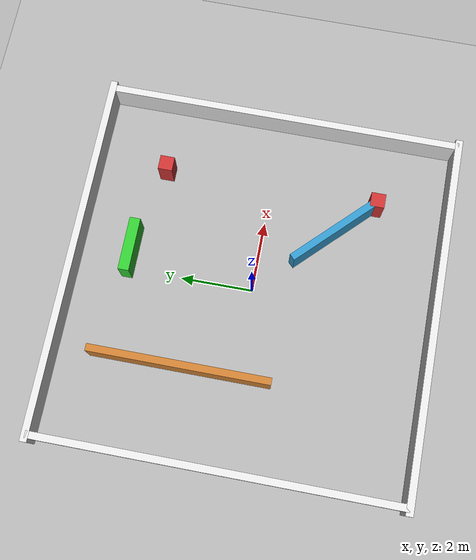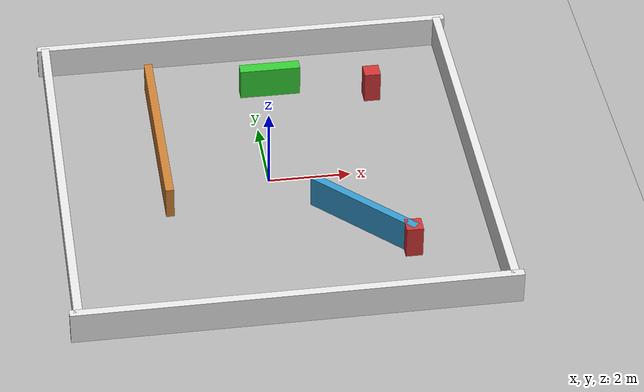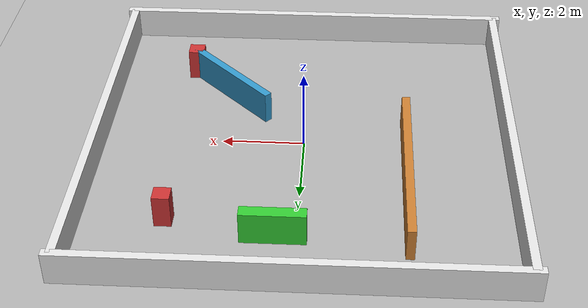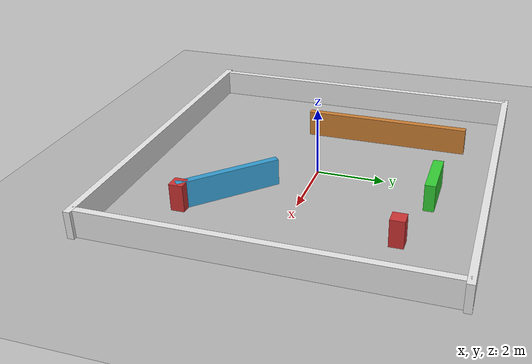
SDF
<?xml version="1.0" ?>
<sdf version="1.6">
  <world name="sensor_world">

    <!-- ── Physics ─────────────────────────────────────────────────────── -->
    <physics name="1ms" type="ignored">
      <max_step_size>0.001</max_step_size>
      <real_time_factor>1.0</real_time_factor>
    </physics>

    <!-- ── Required plugins ─────────────────────────────────────────────── -->
    <plugin filename="ignition-gazebo-physics-system"
            name="gz::sim::systems::Physics"/>
    <plugin filename="ignition-gazebo-user-commands-system"
            name="gz::sim::systems::UserCommands"/>
    <plugin filename="ignition-gazebo-scene-broadcaster-system"
            name="gz::sim::systems::SceneBroadcaster"/>
    <plugin filename="ignition-gazebo-contact-system"
            name="gz::sim::systems::Contact"/>
    <!-- Sensors system required for gpu_lidar -->
    <plugin filename="ignition-gazebo-sensors-system"
            name="gz::sim::systems::Sensors">
      <render_engine>ogre2</render_engine>
    </plugin>

    <!-- ── Lighting ──────────────────────────────────────────────────────── -->
    <light type="directional" name="sun">
      <cast_shadows>true</cast_shadows>
      <pose>0 0 10 0 0 0</pose>
      <diffuse>0.8 0.8 0.8 1</diffuse>
      <specular>0.2 0.2 0.2 1</specular>
      <attenuation>
        <range>1000</range>
        <constant>0.9</constant>
        <linear>0.01</linear>
        <quadratic>0.001</quadratic>
      </attenuation>
      <direction>-0.5 0.1 -0.9</direction>
    </light>

    <!-- ── Ground plane ──────────────────────────────────────────────────── -->
    <model name="ground_plane">
      <static>true</static>
      <link name="link">
        <collision name="collision">
          <geometry>
            <plane><normal>0 0 1</normal><size>100 100</size></plane>
          </geometry>
        </collision>
        <visual name="visual">
          <geometry>
            <plane><normal>0 0 1</normal><size>100 100</size></plane>
          </geometry>
          <material>
            <ambient>0.7 0.7 0.7 1</ambient>
            <diffuse>0.7 0.7 0.7 1</diffuse>
          </material>
        </visual>
      </link>
    </model>

    <!-- South wall  y = -5 -->
    <model name="wall_south">
      <static>true</static>
      <pose>0 -5 0.4 0 0 0</pose>
      <link name="link">
        <collision name="col"><geometry><box><size>10.4 0.2 0.8</size></box></geometry></collision>
        <visual name="vis">
          <geometry><box><size>10.4 0.2 0.8</size></box></geometry>
          <material><ambient>0.9 0.9 0.9 1</ambient><diffuse>0.9 0.9 0.9 1</diffuse></material>
        </visual>
      </link>
    </model>

    <!-- North wall  y = +5 -->
    <model name="wall_north">
      <static>true</static>
      <pose>0 5 0.4 0 0 0</pose>
      <link name="link">
        <collision name="col"><geometry><box><size>10.4 0.2 0.8</size></box></geometry></collision>
        <visual name="vis">
          <geometry><box><size>10.4 0.2 0.8</size></box></geometry>
          <material><ambient>0.9 0.9 0.9 1</ambient><diffuse>0.9 0.9 0.9 1</diffuse></material>
        </visual>
      </link>
    </model>

    <!-- West wall  x = -5 -->
    <model name="wall_west">
      <static>true</static>
      <pose>-5 0 0.4 0 0 0</pose>
      <link name="link">
        <collision name="col"><geometry><box><size>0.2 10.0 0.8</size></box></geometry></collision>
        <visual name="vis">
          <geometry><box><size>0.2 10.0 0.8</size></box></geometry>
          <material><ambient>0.9 0.9 0.9 1</ambient><diffuse>0.9 0.9 0.9 1</diffuse></material>
        </visual>
      </link>
    </model>

    <!-- East wall  x = +5 -->
    <model name="wall_east">
      <static>true</static>
      <pose>5 0 0.4 0 0 0</pose>
      <link name="link">
        <collision name="col"><geometry><box><size>0.2 10.0 0.8</size></box></geometry></collision>
        <visual name="vis">
          <geometry><box><size>0.2 10.0 0.8</size></box></geometry>
          <material><ambient>0.9 0.9 0.9 1</ambient><diffuse>0.9 0.9 0.9 1</diffuse></material>
        </visual>
      </link>
    </model>

    <!-- Long divider wall on the west side (creates a corridor) -->
    <model name="inner_wall_west">
      <static>true</static>
      <pose>-2.5 1.5 0.4 0 0 0</pose>
      <link name="link">
        <collision name="col"><geometry><box><size>0.2 5.0 0.8</size></box></geometry></collision>
        <visual name="vis">
          <geometry><box><size>0.2 5.0 0.8</size></box></geometry>
          <material><ambient>0.8 0.5 0.2 1</ambient><diffuse>0.8 0.5 0.2 1</diffuse></material>
        </visual>
      </link>
    </model>

    <!-- Short horizontal wall on the east side -->
    <model name="inner_wall_east">
      <static>true</static>
      <pose>2.0 -2.0 0.4 0 0 0.785</pose>   <!-- 45 deg, creates an angled feature -->
      <link name="link">
        <collision name="col"><geometry><box><size>0.2 3.0 0.8</size></box></geometry></collision>
        <visual name="vis">
          <geometry><box><size>0.2 3.0 0.8</size></box></geometry>
          <material><ambient>0.2 0.6 0.8 1</ambient><diffuse>0.2 0.6 0.8 1</diffuse></material>
        </visual>
      </link>
    </model>

    <!-- Square pillar — north-east area -->
    <model name="pillar_ne">
      <static>true</static>
      <pose>3.0 3.0 0.4 0 0 0</pose>
      <link name="link">
        <collision name="col"><geometry><box><size>0.4 0.4 0.8</size></box></geometry></collision>
        <visual name="vis">
          <geometry><box><size>0.4 0.4 0.8</size></box></geometry>
          <material><ambient>0.8 0.2 0.2 1</ambient><diffuse>0.8 0.2 0.2 1</diffuse></material>
        </visual>
      </link>
    </model>

    <!-- Square pillar — south-east area -->
    <model name="pillar_se">
      <static>true</static>
      <pose>3.0 -3.0 0.4 0 0 0</pose>
      <link name="link">
        <collision name="col"><geometry><box><size>0.4 0.4 0.8</size></box></geometry></collision>
        <visual name="vis">
          <geometry><box><size>0.4 0.4 0.8</size></box></geometry>
          <material><ambient>0.8 0.2 0.2 1</ambient><diffuse>0.8 0.2 0.2 1</diffuse></material>
        </visual>
      </link>
    </model>

    <!-- Wide box — centre-north, blocks direct line of sight -->
    <model name="box_centre_north">
      <static>true</static>
      <pose>0.5 3.5 0.4 0 0 0</pose>
      <link name="link">
        <collision name="col"><geometry><box><size>1.5 0.3 0.8</size></box></geometry></collision>
        <visual name="vis">
          <geometry><box><size>1.5 0.3 0.8</size></box></geometry>
          <material><ambient>0.2 0.8 0.2 1</ambient><diffuse>0.2 0.8 0.2 1</diffuse></material>
        </visual>
      </link>
    </model>

  </world>
</sdf>
